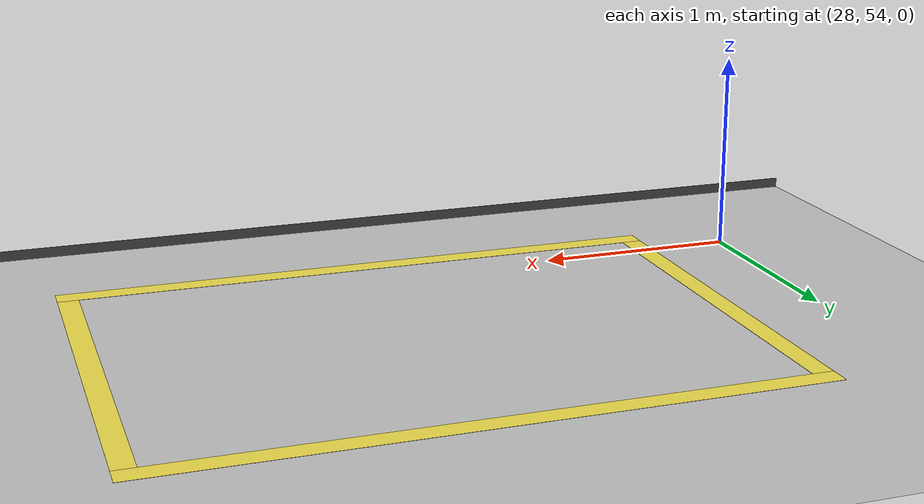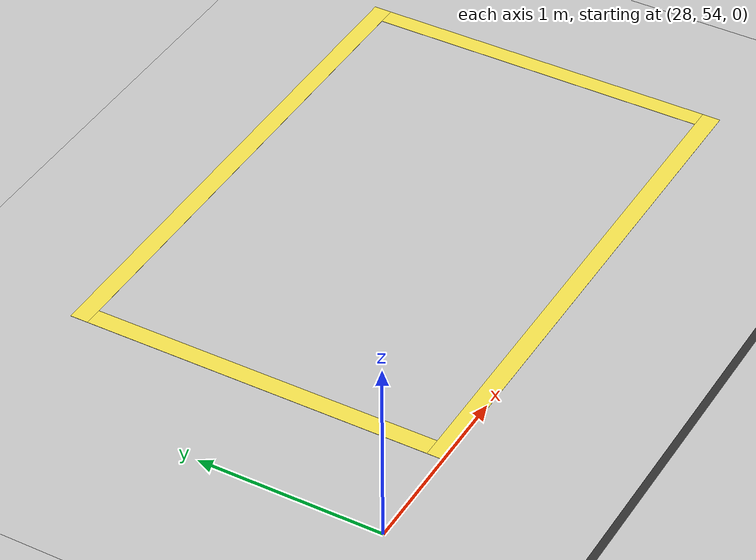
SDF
<sdf version="1.7">
 <world name="default">
  <model name="ground_plane">
   <static>1</static>
   <link name="link">
    <collision name="collision">
     <geometry><plane><normal>0 0 1</normal><size>100 100</size></plane></geometry>
     <surface>
      <contact><collide_bitmask>65535</collide_bitmask></contact>
      <friction><ode><mu>100</mu><mu2>50</mu2></ode></friction>
     </surface>
    </collision>
    <visual name="visual">
     <cast_shadows>0</cast_shadows>
     <geometry><plane><normal>0 0 1</normal><size>100 100</size></plane></geometry>
     <material>
      <script><uri>file://media/materials/scripts/gazebo.material</uri><name>Gazebo/Grey</name></script>
     </material>
    </visual>
   </link>
  </model>
  <model name="asphalt_plane">
   <link name="link">
    <inertial>
     <mass>1</mass>
     <inertia><ixx>1</ixx><ixy>0</ixy><ixz>0</ixz><iyy>1</iyy><iyz>0</iyz><izz>1</izz></inertia>
    </inertial>
    <visual name="visual">
     <cast_shadows>0</cast_shadows>
     <geometry><box><size>50 50 0.1</size></box></geometry>
     <material>
      <script>
       <uri>model://asphalt_plane/materials/scripts</uri>
       <uri>model://asphalt_plane/materials/textures</uri>
       <name>vrc/asphalt</name>
      </script>
      <shader type="pixel"><normal_map>__default__</normal_map></shader>
      <ambient>0.5 0.5 0.5 1</ambient>
      <diffuse>0.5 0.5 0.5 1</diffuse>
      <specular>0.2 0.2 0.2 1</specular>
      <emissive>0 0 0 1</emissive>
     </material>
    </visual>
    <collision name="collision">
     <geometry><box><size>50 50 0.1</size></box></geometry>
     <surface>
      <friction>
       <ode><mu>1</mu><mu2>1</mu2><fdir1>0 0 0</fdir1><slip1>0</slip1><slip2>0</slip2></ode>
       <torsional>
        <coefficient>1</coefficient>
        <patch_radius>0</patch_radius>
        <surface_radius>0</surface_radius>
        <use_patch_radius>1</use_patch_radius>
        <ode><slip>0</slip></ode>
       </torsional>
      </friction>
      <bounce><restitution_coefficient>0</restitution_coefficient><threshold>1e+06</threshold></bounce>
      <contact>
       <collide_without_contact>0</collide_without_contact>
       <collide_without_contact_bitmask>1</collide_without_contact_bitmask>
       <collide_bitmask>1</collide_bitmask>
       <ode>
        <soft_cfm>0</soft_cfm>
        <soft_erp>0.2</soft_erp>
        <kp>1e+13</kp>
        <kd>1</kd>
        <max_vel>0.01</max_vel>
        <min_depth>0</min_depth>
       </ode>
       <bullet>
        <split_impulse>1</split_impulse>
        <split_impulse_penetration_threshold>-0.01</split_impulse_penetration_threshold>
        <soft_cfm>0</soft_cfm>
        <soft_erp>0.2</soft_erp>
        <kp>1e+13</kp>
        <kd>1</kd>
       </bullet>
      </contact>
     </surface>
    </collision>
   </link>
   <static>1</static>
   <pose>25 25 0 0 -0 0</pose>
  </model>
  <model name="agv_marking_big_clone_6_clone_clone_2_clone">
   <link name="link_0">
    <inertial>
     <mass>1</mass>
     <inertia>
      <ixx>0.166667</ixx>
      <ixy>0</ixy>
      <ixz>0</ixz>
      <iyy>0.166667</iyy>
      <iyz>0</iyz>
      <izz>0.166667</izz>
     </inertia>
    </inertial>
    <pose>0 1 0 0 -0 0</pose>
    <visual name="visual">
     <geometry><box><size>3 0.1 0.001</size></box></geometry>
     <material>
      <lighting>1</lighting>
      <script><uri>file://media/materials/scripts/gazebo.material</uri><name>Gazebo/Grey</name></script>
      <shader type="pixel"><normal_map>__default__</normal_map></shader>
      <ambient>0.988 0.914 0.31 1</ambient>
      <diffuse>0.7 0.7 0.7 1</diffuse>
      <specular>0.01 0.01 0.01 1</specular>
      <emissive>0 0 0 1</emissive>
     </material>
    </visual>
    <collision name="collision">
     <geometry><box><size>3 0.1 0.001</size></box></geometry>
     <surface>
      <friction>
       <ode><mu>1</mu><mu2>1</mu2><fdir1>0 0 0</fdir1><slip1>0</slip1><slip2>0</slip2></ode>
       <torsional>
        <coefficient>1</coefficient>
        <patch_radius>0</patch_radius>
        <surface_radius>0</surface_radius>
        <use_patch_radius>1</use_patch_radius>
        <ode><slip>0</slip></ode>
       </torsional>
      </friction>
      <bounce><restitution_coefficient>0</restitution_coefficient><threshold>1e+06</threshold></bounce>
      <contact>
       <collide_without_contact>0</collide_without_contact>
       <collide_without_contact_bitmask>1</collide_without_contact_bitmask>
       <collide_bitmask>1</collide_bitmask>
       <ode>
        <soft_cfm>0</soft_cfm>
        <soft_erp>0.2</soft_erp>
        <kp>1e+13</kp>
        <kd>1</kd>
        <max_vel>0.01</max_vel>
        <min_depth>0</min_depth>
       </ode>
       <bullet>
        <split_impulse>1</split_impulse>
        <split_impulse_penetration_threshold>-0.01</split_impulse_penetration_threshold>
        <soft_cfm>0</soft_cfm>
        <soft_erp>0.2</soft_erp>
        <kp>1e+13</kp>
        <kd>1</kd>
       </bullet>
      </contact>
     </surface>
    </collision>
   </link>
   <link name="link_0_clone">
    <inertial>
     <mass>1</mass>
     <inertia>
      <ixx>0.166667</ixx>
      <ixy>0</ixy>
      <ixz>0</ixz>
      <iyy>0.166667</iyy>
      <iyz>0</iyz>
      <izz>0.166667</izz>
     </inertia>
    </inertial>
    <pose>0 -1 0 0 -0 0</pose>
    <visual name="visual">
     <geometry><box><size>3 0.1 0.001</size></box></geometry>
     <material>
      <lighting>1</lighting>
      <script><uri>file://media/materials/scripts/gazebo.material</uri><name>Gazebo/Grey</name></script>
      <shader type="pixel"><normal_map>__default__</normal_map></shader>
      <ambient>0.988 0.914 0.31 1</ambient>
      <diffuse>0.7 0.7 0.7 1</diffuse>
      <specular>0.01 0.01 0.01 1</specular>
      <emissive>0 0 0 1</emissive>
     </material>
    </visual>
    <collision name="collision">
     <geometry><box><size>3 0.1 0.001</size></box></geometry>
     <surface>
      <friction>
       <ode><mu>1</mu><mu2>1</mu2><fdir1>0 0 0</fdir1><slip1>0</slip1><slip2>0</slip2></ode>
       <torsional>
        <coefficient>1</coefficient>
        <patch_radius>0</patch_radius>
        <surface_radius>0</surface_radius>
        <use_patch_radius>1</use_patch_radius>
        <ode><slip>0</slip></ode>
       </torsional>
      </friction>
      <bounce><restitution_coefficient>0</restitution_coefficient><threshold>1e+06</threshold></bounce>
      <contact>
       <collide_without_contact>0</collide_without_contact>
       <collide_without_contact_bitmask>1</collide_without_contact_bitmask>
       <collide_bitmask>1</collide_bitmask>
       <ode>
        <soft_cfm>0</soft_cfm>
        <soft_erp>0.2</soft_erp>
        <kp>1e+13</kp>
        <kd>1</kd>
        <max_vel>0.01</max_vel>
        <min_depth>0</min_depth>
       </ode>
       <bullet>
        <split_impulse>1</split_impulse>
        <split_impulse_penetration_threshold>-0.01</split_impulse_penetration_threshold>
        <soft_cfm>0</soft_cfm>
        <soft_erp>0.2</soft_erp>
        <kp>1e+13</kp>
        <kd>1</kd>
       </bullet>
      </contact>
     </surface>
    </collision>
   </link>
   <link name="link_1">
    <inertial>
     <mass>1</mass>
     <inertia>
      <ixx>0.166667</ixx>
      <ixy>0</ixy>
      <ixz>0</ixz>
      <iyy>0.166667</iyy>
      <iyz>0</iyz>
      <izz>0.166667</izz>
     </inertia>
    </inertial>
    <pose>-1.45 0 0 0 -0 0</pose>
    <visual name="visual">
     <geometry><box><size>0.1 1.9 0.001</size></box></geometry>
     <material>
      <lighting>1</lighting>
      <script><uri>file://media/materials/scripts/gazebo.material</uri><name>Gazebo/Grey</name></script>
      <shader type="pixel"><normal_map>__default__</normal_map></shader>
      <ambient>0.988 0.914 0.31 1</ambient>
      <diffuse>0.7 0.7 0.7 1</diffuse>
      <specular>0.01 0.01 0.01 1</specular>
      <emissive>0 0 0 1</emissive>
     </material>
    </visual>
    <collision name="collision">
     <geometry><box><size>0.1 1.9 0.001</size></box></geometry>
     <surface>
      <friction>
       <ode><mu>1</mu><mu2>1</mu2><fdir1>0 0 0</fdir1><slip1>0</slip1><slip2>0</slip2></ode>
       <torsional>
        <coefficient>1</coefficient>
        <patch_radius>0</patch_radius>
        <surface_radius>0</surface_radius>
        <use_patch_radius>1</use_patch_radius>
        <ode><slip>0</slip></ode>
       </torsional>
      </friction>
      <bounce><restitution_coefficient>0</restitution_coefficient><threshold>1e+06</threshold></bounce>
      <contact>
       <collide_without_contact>0</collide_without_contact>
       <collide_without_contact_bitmask>1</collide_without_contact_bitmask>
       <collide_bitmask>1</collide_bitmask>
       <ode>
        <soft_cfm>0</soft_cfm>
        <soft_erp>0.2</soft_erp>
        <kp>1e+13</kp>
        <kd>1</kd>
        <max_vel>0.01</max_vel>
        <min_depth>0</min_depth>
       </ode>
       <bullet>
        <split_impulse>1</split_impulse>
        <split_impulse_penetration_threshold>-0.01</split_impulse_penetration_threshold>
        <soft_cfm>0</soft_cfm>
        <soft_erp>0.2</soft_erp>
        <kp>1e+13</kp>
        <kd>1</kd>
       </bullet>
      </contact>
     </surface>
    </collision>
   </link>
   <link name="link_1_clone">
    <inertial>
     <mass>1</mass>
     <inertia>
      <ixx>0.166667</ixx>
      <ixy>0</ixy>
      <ixz>0</ixz>
      <iyy>0.166667</iyy>
      <iyz>0</iyz>
      <izz>0.166667</izz>
     </inertia>
    </inertial>
    <pose>1.45 0 0 0 -0 0</pose>
    <visual name="visual">
     <geometry><box><size>0.1 1.9 0.001</size></box></geometry>
     <material>
      <lighting>1</lighting>
      <script><uri>file://media/materials/scripts/gazebo.material</uri><name>Gazebo/Grey</name></script>
      <shader type="pixel"><normal_map>__default__</normal_map></shader>
      <ambient>0.988 0.914 0.31 1</ambient>
      <diffuse>0.7 0.7 0.7 1</diffuse>
      <specular>0.01 0.01 0.01 1</specular>
      <emissive>0 0 0 1</emissive>
     </material>
    </visual>
    <collision name="collision">
     <geometry><box><size>0.1 1.9 0.001</size></box></geometry>
     <surface>
      <friction>
       <ode><mu>1</mu><mu2>1</mu2><fdir1>0 0 0</fdir1><slip1>0</slip1><slip2>0</slip2></ode>
       <torsional>
        <coefficient>1</coefficient>
        <patch_radius>0</patch_radius>
        <surface_radius>0</surface_radius>
        <use_patch_radius>1</use_patch_radius>
        <ode><slip>0</slip></ode>
       </torsional>
      </friction>
      <bounce><restitution_coefficient>0</restitution_coefficient><threshold>1e+06</threshold></bounce>
      <contact>
       <collide_without_contact>0</collide_without_contact>
       <collide_without_contact_bitmask>1</collide_without_contact_bitmask>
       <collide_bitmask>1</collide_bitmask>
       <ode>
        <soft_cfm>0</soft_cfm>
        <soft_erp>0.2</soft_erp>
        <kp>1e+13</kp>
        <kd>1</kd>
        <max_vel>0.01</max_vel>
        <min_depth>0</min_depth>
       </ode>
       <bullet>
        <split_impulse>1</split_impulse>
        <split_impulse_penetration_threshold>-0.01</split_impulse_penetration_threshold>
        <soft_cfm>0</soft_cfm>
        <soft_erp>0.2</soft_erp>
        <kp>1e+13</kp>
        <kd>1</kd>
       </bullet>
      </contact>
     </surface>
    </collision>
   </link>
   <static>1</static>
   <pose>30 55 0.075 0 -0 0</pose>
  </model>
 </world>
</sdf>
